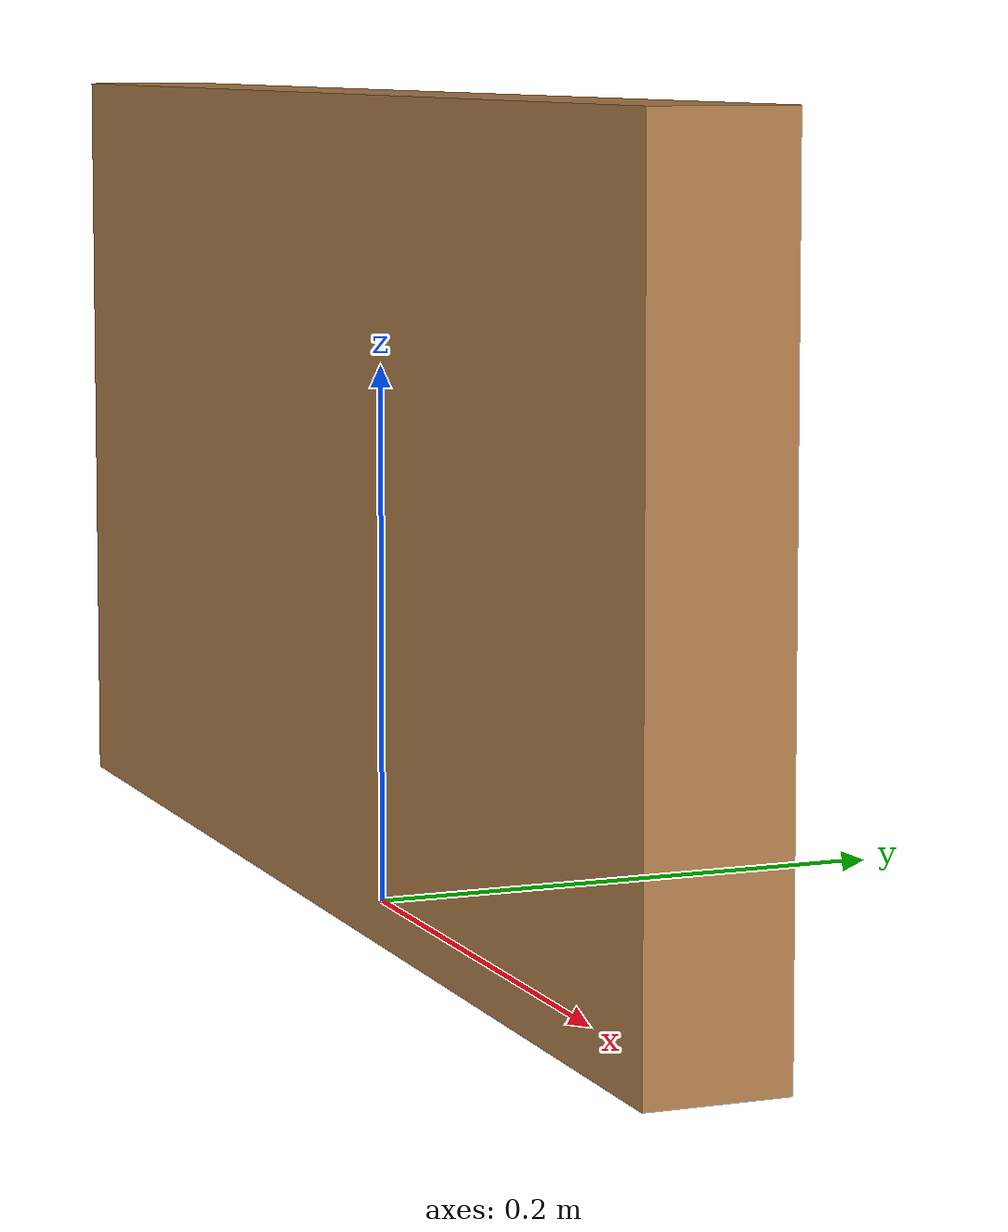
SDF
<?xml version='1.0'?>
<sdf version='1.6'>
  <model name='wall0m60'>
    <pose frame=''>0 0 0 0 0 0</pose>
    <link name='Wall_0'>
      <collision name='Wall_0_Collision'>
        <geometry>
          <box>
            <size>0.6 0.05 0.3</size>
          </box>
        </geometry>
        <pose frame=''>0 0 0.15 0 -0 0</pose>
      </collision>
      <visual name='Wall_0_Visual'>
        <pose frame=''>0 0 0.15 0 -0 0</pose>
        <geometry>
          <box>
            <size>0.6 0.05 0.3</size>
          </box>
        </geometry>
        <material>
          <script>
            <uri>file://media/materials/scripts/gazebo.material</uri>
            <name>Gazebo/Wood</name>
          </script>
          <ambient>1 1 1 1</ambient>
        </material>
        <meta>
          <layer>0</layer>
        </meta>
      </visual>
      <pose frame=''>0 0 0 0 0 0</pose>
    </link>
    <static>1</static>
  </model>
</sdf>
